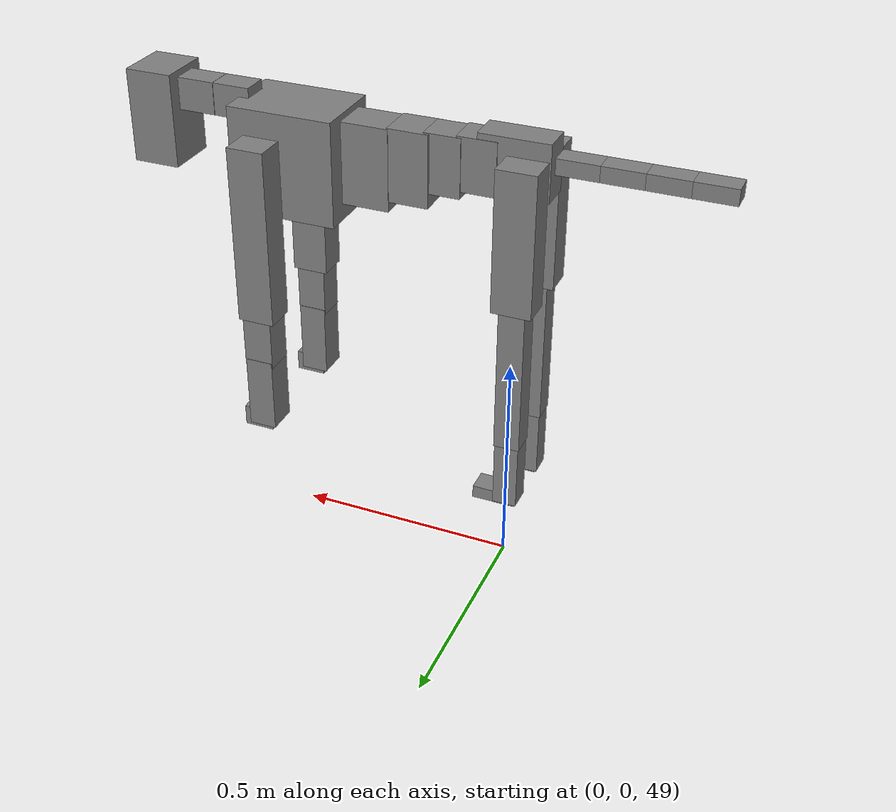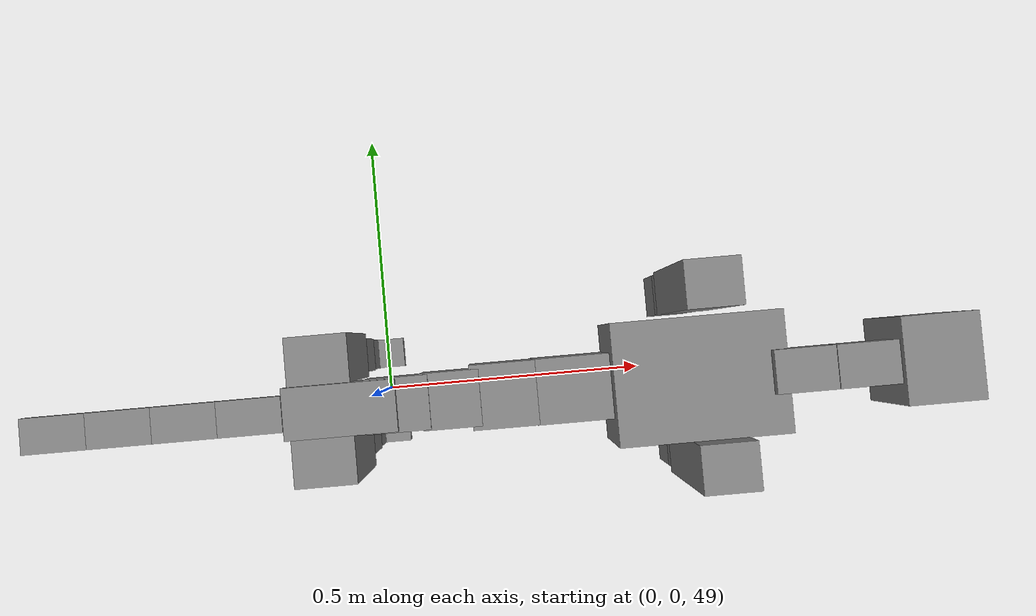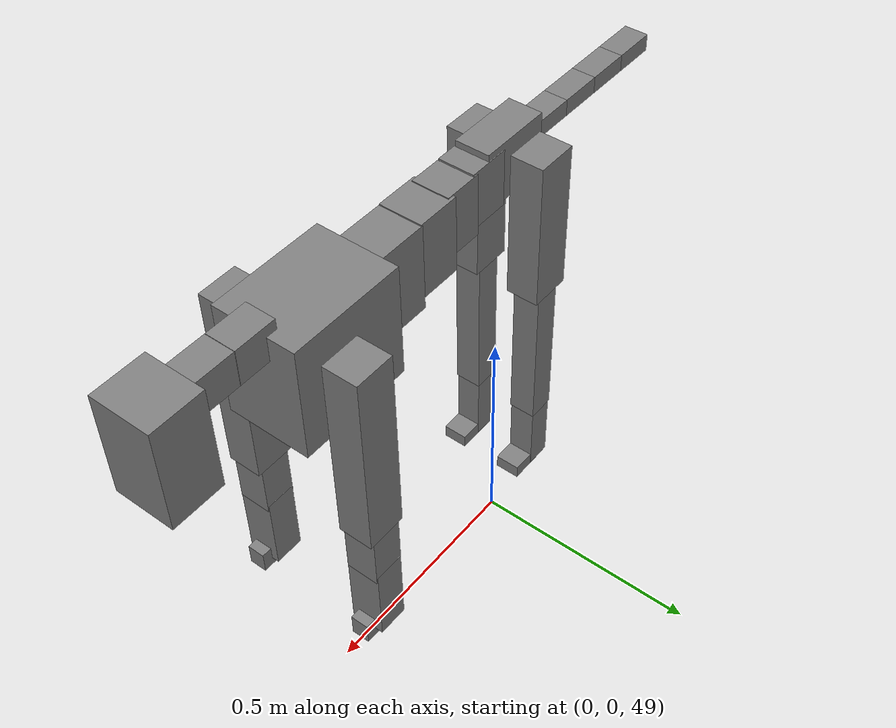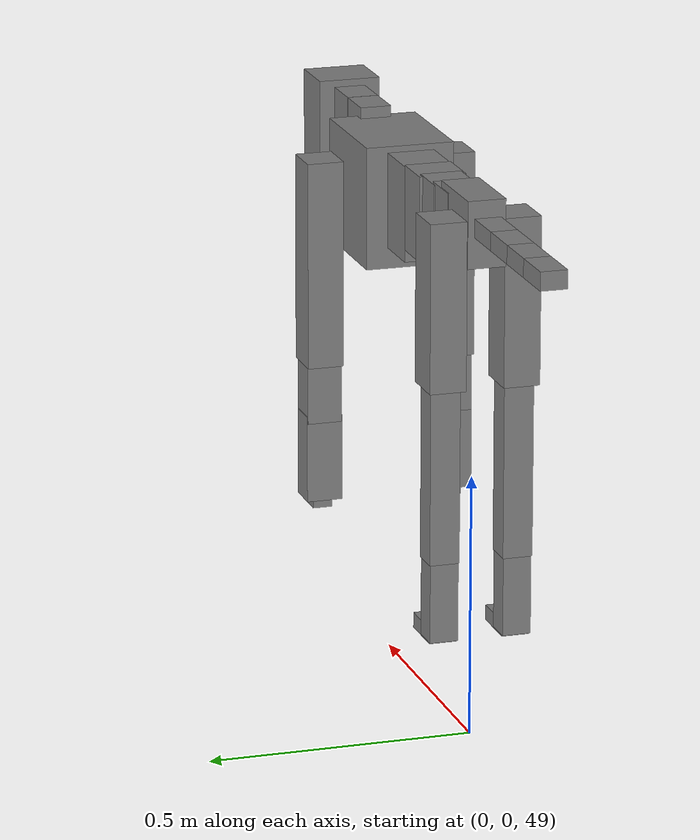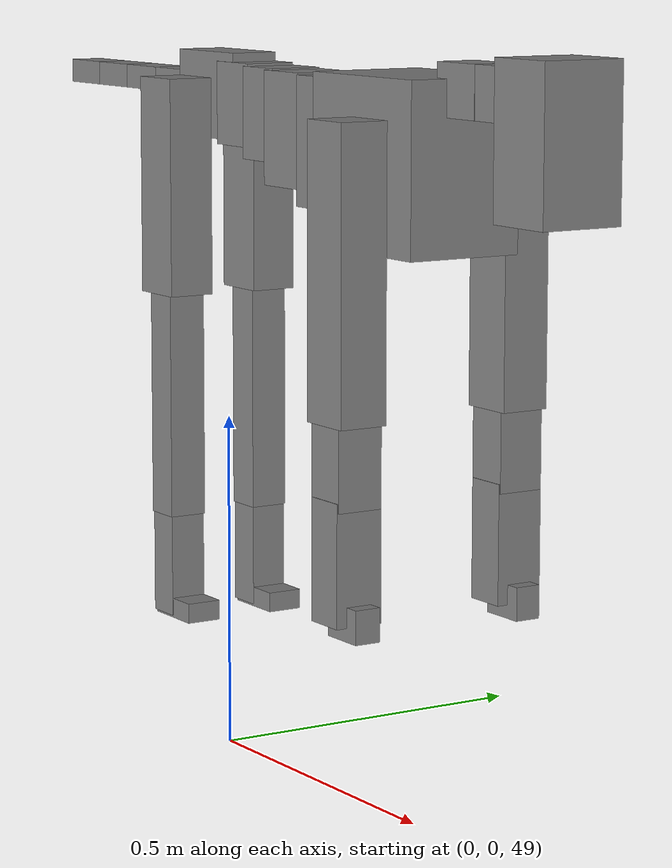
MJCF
<mujoco model="dog">

    <default>
        <joint armature="0.02" stiffness="1" damping="0.2" limited="true"/>
        <geom condim="3" friction="1 0.05 0.05" margin="0.01"/>
        <motor ctrllimited="true" ctrlrange="-1.0 1.0" forcelimited="true" gear="50"/>
    </default>

    <compiler inertiafromgeom="true" angle="radian"/>

    <option timestep="0.016" iterations="50" tolerance="1e-10" solver="Newton" jacobian="dense" cone="pyramidal"/>

    <size nconmax="20000" njmax="60000" nstack="5000000"/>
    <visual>
        <map force="0.1" zfar="30"/>
        <rgba haze="0.15 0.25 0.35 1"/>
        <quality shadowsize="2048"/>
        <global offwidth="800" offheight="800"/>
    </visual>

    <asset>
        <texture type="skybox" builtin="gradient" rgb1="0.3 0.5 0.7" rgb2="0 0 0" width="512" height="512"/>
        <texture name="texplane" type="2d" builtin="checker" rgb1=".2 .3 .4" rgb2=".1 0.15 0.2" width="512" height="512"
                 mark="cross" markrgb=".8 .8 .8"/>
        <texture name="texgeom" type="cube" builtin="flat" mark="cross" width="127" height="1278" rgb1="0.8 0.6 0.4"
                 rgb2="0.8 0.6 0.4" markrgb="1 1 1" random="0.01"/>

        <material name="matplane" reflectance="0.3" texture="texplane" texrepeat="1 1" texuniform="true"/>
        <material name="matgeom" texture="texgeom" texuniform="true" rgba="0.8 0.6 .4 1"/>
    </asset>

    <worldbody>
        <geom name="floor" pos="0 0 0" size="0 0 .25" type="plane" material="matplane" condim="3"/>

        <light directional="false" diffuse=".2 .2 .2" specular="0 0 0" pos="0 0 5" dir="0 0 -1" castshadow="false"/>
        <light mode="targetbodycom" target="torso" directional="false" diffuse=".8 .8 .8" specular="0.3 0.3 0.3"
               pos="0 0 4.0" dir="0 0 -1"/>

        <body name="root" pos="0 0 50">
            <freejoint name="root_1"/>
            <geom type="box" pos="0 0 -0.02" size="0.0774  0.0358  0.063" density="2030"/>

            <body name="spine1" pos="0.054 0 0">
                <joint name="spine1_y" axis="0 1 0" range="0 0.7" limited="true"/>
                <geom type="box" pos="0.02375 0 -0.03" size="0.04375  0.0375  0.05985" density="2030"/>

                <body name="spine2" pos="0.0612 0 0">
                    <joint name="spine2_y" axis="0 1 0" range="-0.15 0.15" limited="true"/>
                    <geom type="box" pos="0.03555  0  -0.04" size="0.04055  0.039  0.06615" density="2030"/>

                    <body name="spine3" pos="0.0730 0 0">
                        <joint name="spine3_y" axis="0 1 0" range="-0.15 0.15" limited="true"/>
                        <geom type="box" pos="0.03555  0  -0.057" size="0.04555  0.0445  0.081" density="2030"/>

                        <body name="spine4" pos="0.0780 0 0">
                            <joint name="spine4_y" axis="0 1 0" range="-0.15 0.15" limited="true"/>
                            <geom type="box" pos="0.05265  0  -0.07" size="0.05265  0.045  0.09135" density="2030"/>

                            <body name="torso" pos="0.1082 0 0">
                                <joint name="torso_y" axis="0 1 0" range="-0.15 0.15" limited="true"/>
                                <geom type="box" pos="0.11925  0  -0.085" size="0.11925  0.085  0.11745"
                                      density="2030"/>

                                <body name="neck1" pos="0.2160  0   0.0180">
                                    <joint name="neck1_y" axis="0 1 0" range="-1.2  -1" limited="true"/>
                                    <geom type="box" pos="0.0423  0  0" size="0.0423  0.03  0.036" density="2325"/>

                                    <body name="neck2" pos="0.0853  0  0">
                                        <joint name="neck2_y" axis="0 1 0" range="0.1  0" limited="true"/>
                                        <geom type="box" pos="0.0423  0  0" size="0.0423  0.03  0.036" density="2325"/>

                                        <body name="head" pos="0.0853  0  0">
                                            <joint name="head_y" axis="0 1 0" range="-0.3  -0.2" limited="true"/>
                                            <geom type="box" pos="0.0531  0  -0.055" size="0.0531  0.06  0.1044"
                                                  density="4030"/>

                                        </body>
                                    </body>
                                </body>

                                <body name="front_shoulder" pos="0.156  0   -0.0480">
                                    <joint name="front_shoulder_y" axis="0 1 0" range="-1 1.5" limited="true"/>
                                    <geom type="box" pos="0 0.13 -0.1739" size="0.0412  0.0352  0.2005" density="1158"/>
                                    <geom type="box" pos="0 -0.13 -0.1739" size="0.0412  0.0352  0.2005"
                                          density="1158"/>

                                    <body name="front_elbow" pos="0  0  -0.3478">
                                        <joint name="front_elbow_y" axis="0 1 0" range="-2 0" limited="true"/>
                                        <geom type="box" pos="0 0.13 -0.0695" size="0.0329  0.0336  0.0695"
                                              density="1081"/>
                                        <geom type="box" pos="0 -0.13 -0.0695" size="0.0329  0.0336  0.0695"
                                              density="1081"/>

                                        <body name="front_wrist" pos="0  0  -0.1391">
                                            <joint name="front_wrist_y" axis="0 1 0" range="-0.2 0" limited="true"/>
                                            <geom type="box" pos="0 0.13 -0.0714" size="0.0313  0.0348  0.0846"
                                                  density="1664"/>
                                            <geom type="box" pos="0 -0.13 -0.0714" size="0.0313  0.0348  0.0846"
                                                  density="1664"/>

                                            <body name="front_finger_end" pos="0  0  -0.1428">
                                                <joint name="front_finger_y" axis="0 1 0" range="-0.4 1"
                                                       limited="true"/>
                                                <geom type="box" pos="0.0187  0.13  -0.0086"
                                                      size="0.0343  0.0187  0.0236" density="1515"/>
                                                <geom type="box" pos="0.0187  -0.13  -0.0086"
                                                      size="0.0343  0.0187  0.0236" density="1515"/>

                                            </body>

                                        </body>
                                    </body>
                                </body>

                            </body>
                        </body>
                    </body>
                </body>
            </body>

            <body name="back_hip" pos="-0.03 0 -0.018">
                <joint name="back_hip_y" axis="0 1 0" range="-1.5 0.3" limited="true"/>
                <geom type="box" pos="0 0.07 -0.1358" size="0.0439  0.0344  0.1586" density="1154"/>
                <geom type="box" pos="0 -0.07 -0.1358" size="0.0439  0.0344  0.1586" density="1154"/>

                <body name="back_knee" pos="0  0  -0.2717">
                    <joint name="back_knee_y" axis="0 1 0" range="0 2.8" limited="true"/>
                    <geom type="box" pos="0 0.07 -0.1690" size="0.0286  0.0282  0.1845" density="1227"/>
                    <geom type="box" pos="0 -0.07 -0.1690" size="0.0286  0.0282  0.1845" density="1227"/>

                    <body name="back_ankle" pos="0  0  -0.3379">
                        <joint name="back_ankle_y" axis="0 1 0" range="-2.2 0" limited="true"/>
                        <geom type="box" pos="0 0.07 -0.0772" size="0.0269  0.0269  0.0884" density="1284"/>
                        <geom type="box" pos="0 -0.07 -0.0772" size="0.0269  0.0269  0.0884" density="1284"/>

                        <body name="back_toe_end" pos="0  0  -0.1544">
                            <joint name="back_toe_y" axis="0 1 0" range="-0.4 1" limited="true"/>
                            <geom type="box" pos="0.0262  0.07  0.0004" size="0.0479  0.0262  0.0146" density="1515"/>
                            <geom type="box" pos="0.0262  -0.07  0.0004" size="0.0479  0.0262  0.0146" density="1515"/>

                        </body>
                    </body>
                </body>
            </body>

            <body name="tail1" pos="-0.074 0 -0.006">
                <joint name="tail1_y" axis="0 1 0" range="-0.2 0.2" limited="true"/>
                <geom type="box" pos="-0.0536  0  0" size="0.045  0.025  0.0175" density="1587"/>

                <body name="tail2" pos="-0.09 0 0">
                    <joint name="tail2_y" axis="0 1 0" range="-0.2 0.2" limited="true"/>
                    <geom type="box" pos="-0.0536  0  0" size="0.045  0.025  0.0175" density="1587"/>

                    <body name="tail3" pos="-0.09 0 0">
                        <joint name="tail3_y" axis="0 1 0" range="-0.2 0.2" limited="true"/>
                        <geom type="box" pos="-0.0536  0  0" size="0.045  0.025  0.0175" density="1587"/>

                        <body name="tail4" pos="-0.09 0 0">
                            <joint name="tail4_y" axis="0 1 0" range="-0.2 0.2" limited="true"/>
                            <geom type="box" pos="-0.0536  0  0" size="0.045  0.025  0.0175" density="1587"/>

                        </body>
                    </body>
                </body>
            </body>
        </body>
    </worldbody>

    <actuator>
        <motor joint="spine1_y" forcerange="-150 150     "/>
        <motor joint="spine2_y" forcerange="-150 150     "/>
        <motor joint="spine3_y" forcerange="-150 150     "/>
        <motor joint="spine4_y" forcerange="-150 150     "/>
        <motor joint="torso_y" forcerange="-150 150     "/>
        <motor joint="neck1_y" forcerange="-100 100       "/>
        <motor joint="neck2_y" forcerange="-100 100       "/>
        <motor joint="head_y" forcerange="-150 150       "/>
        <motor joint="front_shoulder_y" forcerange="-163.27 171.25"/>
        <motor joint="front_elbow_y" forcerange="-173.75 170.64"/>
        <motor joint="front_wrist_y" forcerange="-148.49 130.14"/>
        <motor joint="front_finger_y" forcerange="-27.41 32.42"/>
        <motor joint="back_hip_y" forcerange="-287.87 371.36"/>
        <motor joint="back_knee_y" forcerange="-354.27 256.44"/>
        <motor joint="back_angle_y" forcerange="-241.65 88.45"/>
        <motor joint="back_toe_y" forcerange="-37.31 91.91"/>
        <motor joint="tail1_y" forcerange="-50 50     "/>
        <motor joint="tail2_y" forcerange="-50 50     "/>
        <motor joint="tail3_y" forcerange="-50 50     "/>
        <motor joint="tail4_y" forcerange="-50 50     "/>
    </actuator>
</mujoco>
